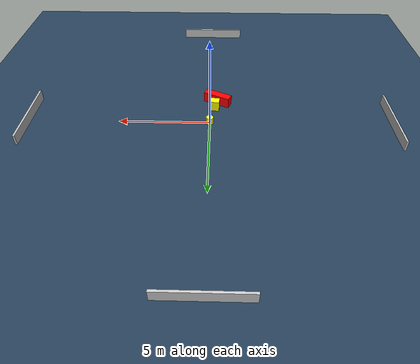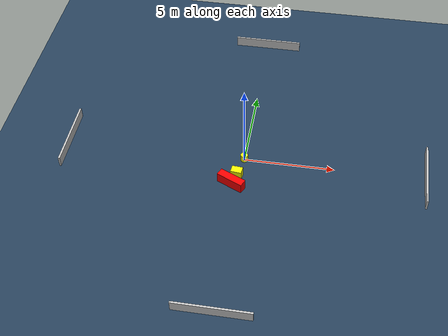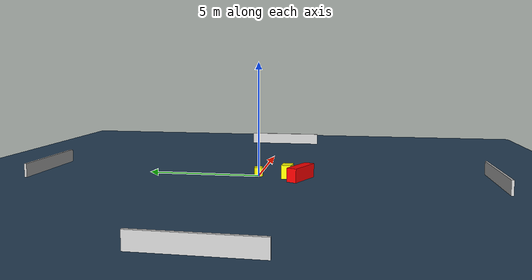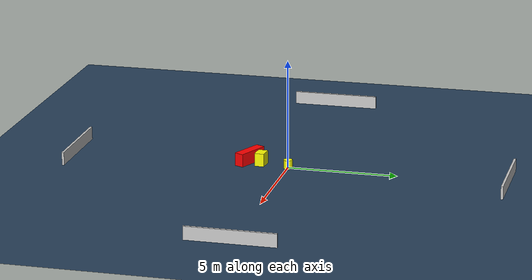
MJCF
<?xml version="1.0" ?>
<mujoco model="generated_environment">
  <option timestep="0.01" integrator="RK4" cone="elliptic"/>
  <default>
    <geom density="1"/>
  </default>
  <asset>
    <texture builtin="gradient" height="3072" name="skybox" rgb1="0.3 0.5 0.7" rgb2="0 0 0" type="skybox" width="512"/>
    <texture builtin="checker" height="300" name="groundplane" rgb1="0.2 0.3 0.4" rgb2="0.1 0.2 0.3" type="2d" width="300"/>
    <material name="groundplane" reflectance="0.2" texrepeat="5 5" texture="groundplane"/>
  </asset>
  <worldbody>
    <light dir="0 0 -1" directional="true" pos="0 0 1.5"/>
    <geom condim="3" friction="0.5 0.005 0.001" material="groundplane" name="floor" pos="0 0 0" size="0 0 0.05" type="plane"/>
    <body name="walls">
      <geom name="wall_1" condim="4" pos="-10.0 0.0 0.3" rgba="0.800000011920929 0.800000011920929 0.800000011920929 1.0" size="0.05 2.0 0.3" type="box"/>
      <geom name="wall_2" condim="4" pos="10.0 0.0 0.3" rgba="0.800000011920929 0.800000011920929 0.800000011920929 1.0" size="0.05 2.0 0.3" type="box"/>
      <geom name="wall_3" condim="4" pos="0.0 -10.0 0.3" rgba="0.800000011920929 0.800000011920929 0.800000011920929 1.0" size="2.0 0.05 0.3" type="box"/>
      <geom name="wall_4" condim="4" pos="0.0 10.0 0.3" rgba="0.800000011920929 0.800000011920929 0.800000011920929 1.0" size="2.0 0.05 0.3" type="box"/>
    </body>
    <body name="robot">
      <joint name="joint_x" type="slide" pos="0 0 0" axis="1 0 0"/>
      <joint name="joint_y" type="slide" pos="0 0 0" axis="0 1 0"/>
      <geom name="robot" type="cylinder" pos="0.0 0.0 0.2" size="0.2 0.2 0.0" mass="5.0" friction="1.0 0.005 0.0001" condim="4" rgba="1.0 1.0 0.0 1.0"/>
    </body>
    <body name="obstacle_1_movable">
      <geom name="obstacle_1_movable" condim="4" pos="-0.21896549730829104 -1.29998353588847 0.3" euler="0 0 84.21194189441495" friction="0.0 0.005 0.001" rgba="1.0 1.0 0.0 1.0" size="0.21680880152381626 0.2969929840936378 0.3" type="box" mass="0.1"/>
      <joint type="free"/>
    </body>
    <body name="obstacle_2_static">
      <geom name="obstacle_2_static" condim="4" pos="-0.42198584957256685 -1.8978511084390688 0.3" euler="0 0 334.87948605731475" friction="0.0 0.005 0.001" rgba="1.0 0.0 0.0 1.0" size="0.7722386580874294 0.21989595994704603 0.3" type="box"/>
    </body>
  </worldbody>
  <actuator>
    <motor name="actuator_x" joint="joint_x" gear="1" ctrlrange="-1 1"/>
    <motor name="actuator_y" joint="joint_y" gear="1" ctrlrange="-1 1"/>
  </actuator>
</mujoco>
